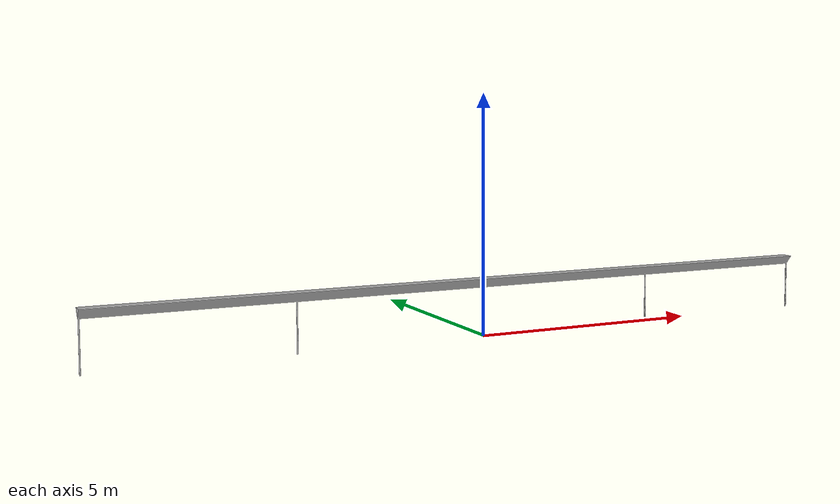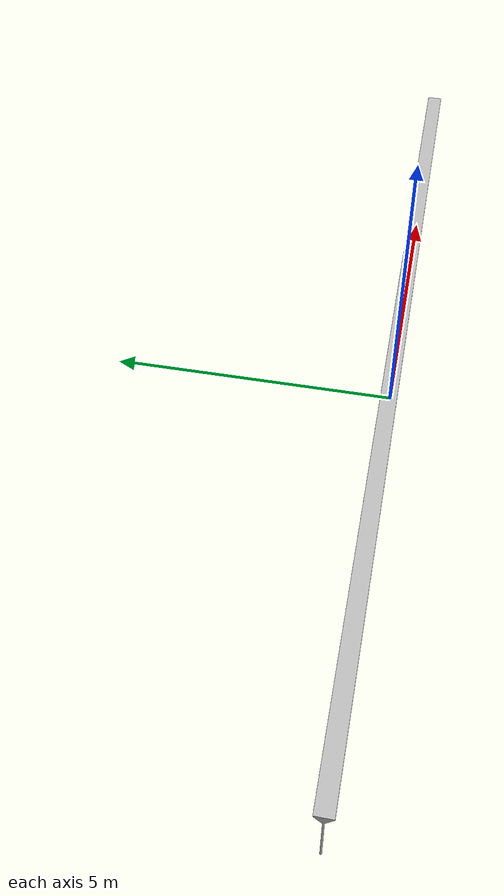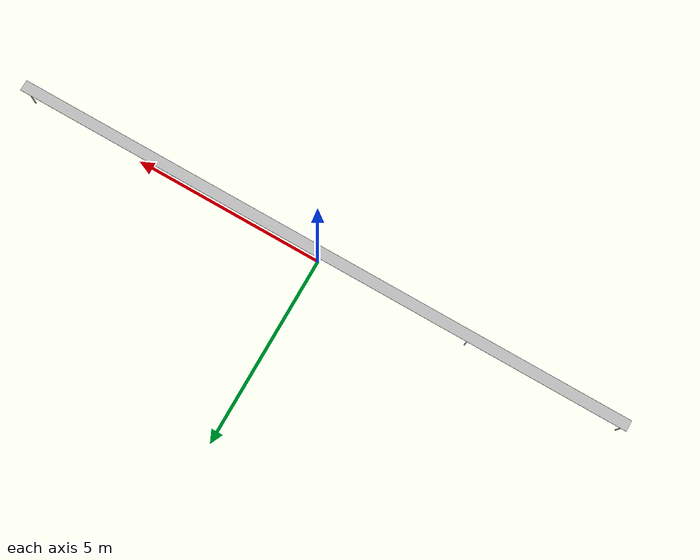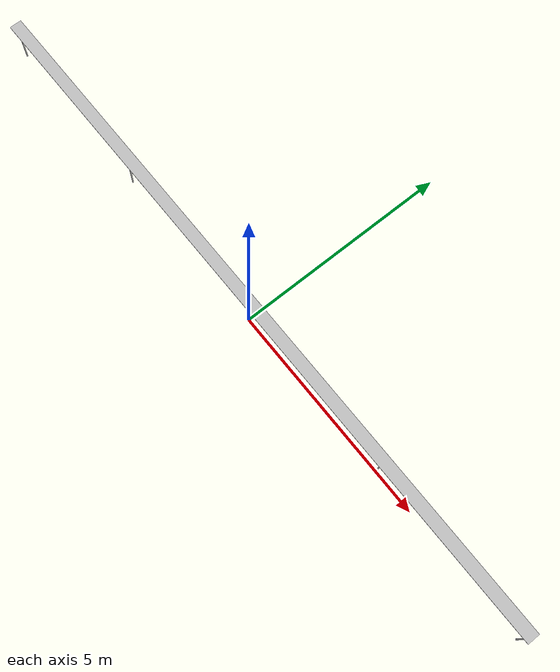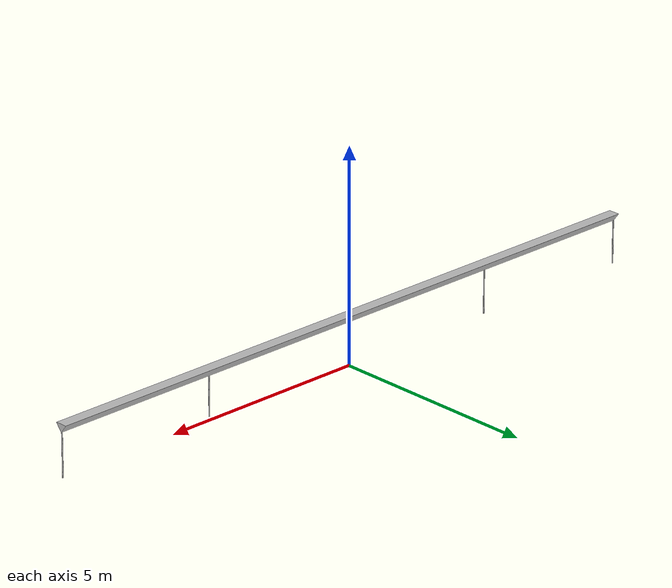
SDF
<?xml version='1.0'?>
<sdf version="1.6">
<model name="Planter_1">
  <static>true</static>
    <link name="link">
      <visual name="visual">
        <geometry>
          <mesh>
            <uri>models/Planter/meshes/Planter.dae</uri>
          </mesh>
        </geometry>
      </visual>
      <collision name="collision">
        <geometry>
          <mesh>
            <uri>models/Planter/meshes/Planter.dae</uri>
          </mesh>
        </geometry>
        <laser_retro>100</laser_retro>
      </collision>
    </link>
  </model>
</sdf>
